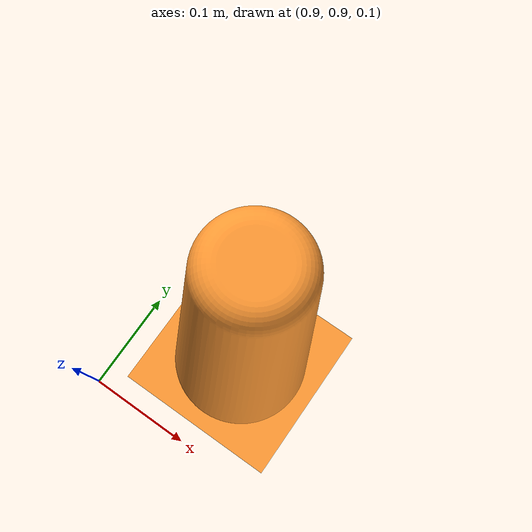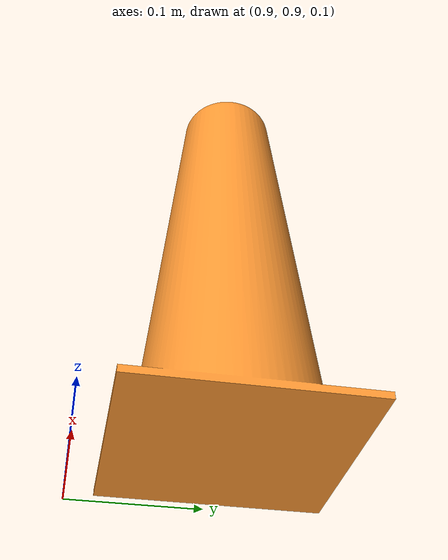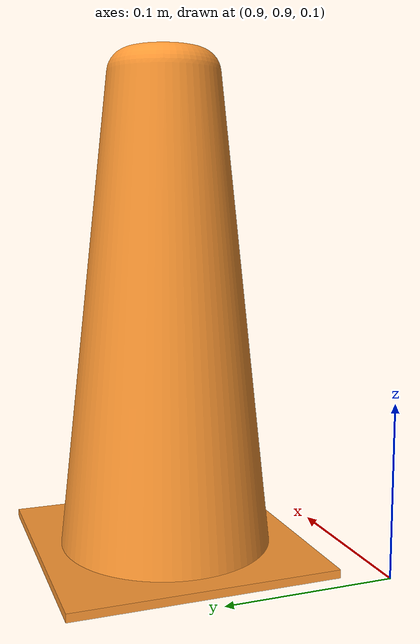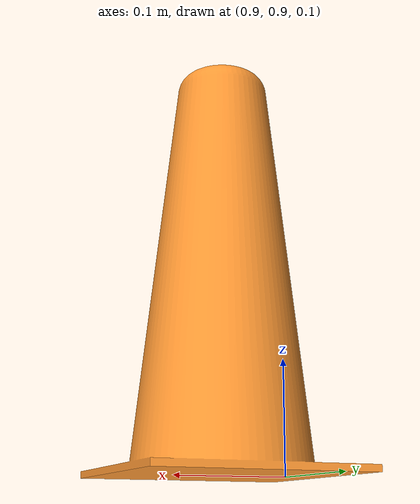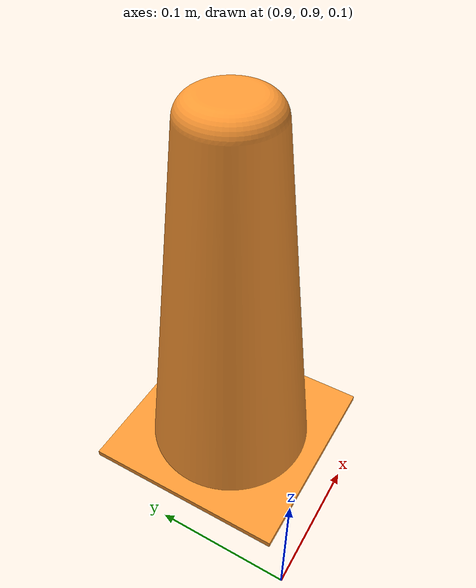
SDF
<?xml version="1.0"?>
<sdf version="1.4">
  <model name="cone">
    <pose>1 1 0.1  1.5707 0 0</pose>
    <static>false</static>
    <link name="cone_link">
      <inertial>
        <mass>1.0</mass>
        <inertia>
          <ixx>0.083</ixx>
          <ixy>0.0</ixy>
          <ixz>0.0</ixz>
          <iyy>0.083</iyy>
          <iyz>0.0</iyz>
          <izz>0.083</izz>
        </inertia>
      </inertial>
      <visual name="cone_visual">
        <material>
          <ambient>1 0.6 0.2 1</ambient>
          <diffuse>1 0.6 0.2 1</diffuse>
          <specular>0 0 0 0</specular>
          <emissive>0 0 0 1</emissive>
        </material>
        <geometry>
          <mesh>
            <uri>model://good_cone/meshes/cone.stl</uri>
            <scale>0.001 0.001 0.001</scale>
          </mesh>
        </geometry>
      </visual>
      <collision name="cone_collision">
        <geometry>
          <mesh>
            <uri>model://good_cone/meshes/cone.stl</uri>
            <scale>0.001 0.001 0.001</scale>
          </mesh>
        </geometry>
      </collision>
    </link>
  </model>
</sdf>
